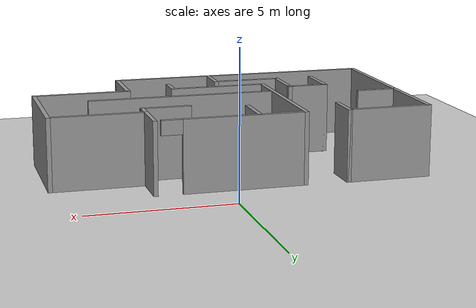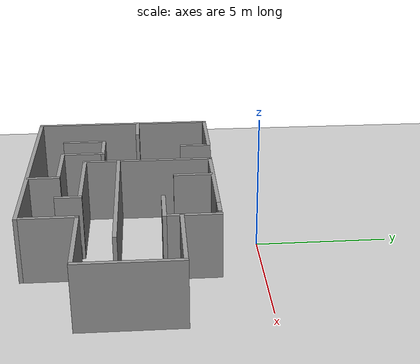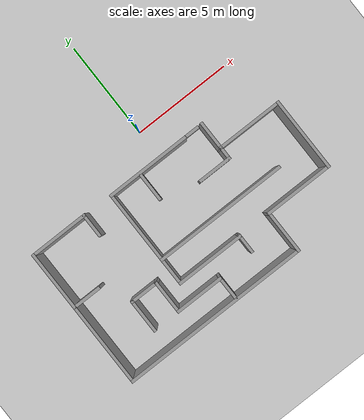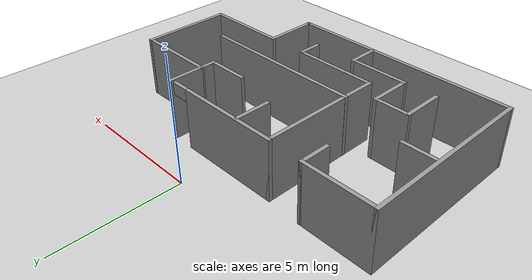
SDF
<sdf version="1.7">
 <world name="myworld">
  <light name="sun" type="directional">
   <pose>0 0 10 0 -0 0</pose>
   <diffuse>0.8 0.8 0.8 1</diffuse>
   <specular>0.2 0.2 0.2 1</specular>
   <attenuation>
    <range>1000</range>
    <constant>0.9</constant>
    <linear>0.01</linear>
    <quadratic>0.001</quadratic>
   </attenuation>
   <direction>-0.5 0.1 -0.9</direction>
   <spot><inner_angle>0</inner_angle><outer_angle>0</outer_angle><falloff>0</falloff></spot>
  </light>
  <model name="ground_plane">
   <static>1</static>
   <link name="link">
    <collision name="collision">
     <geometry><plane><normal>0 0 1</normal><size>100 100</size></plane></geometry>
     <surface>
      <contact><collide_bitmask>65535</collide_bitmask></contact>
      <friction><ode><mu>100</mu><mu2>50</mu2></ode></friction>
     </surface>
    </collision>
    <visual name="visual">
     <cast_shadows>0</cast_shadows>
     <geometry><plane><normal>0 0 1</normal><size>100 100</size></plane></geometry>
     <material>
      <script><uri>file://media/materials/scripts/gazebo.material</uri><name>Gazebo/Grey</name></script>
     </material>
    </visual>
   </link>
  </model>
  <gravity>0 0 -9.8</gravity>
  <magnetic_field>6e-06 2.3e-05 -4.2e-05</magnetic_field>
  <atmosphere type="adiabatic"/>
  <physics type="ode">
   <max_step_size>0.001</max_step_size>
   <real_time_factor>1</real_time_factor>
   <real_time_update_rate>1000</real_time_update_rate>
  </physics>
  <scene><ambient>0.4 0.4 0.4 1</ambient><background>0.7 0.7 0.7 1</background><shadows>1</shadows></scene>
  <spherical_coordinates>
   <surface_model>EARTH_WGS84</surface_model>
   <latitude_deg>0</latitude_deg>
   <longitude_deg>0</longitude_deg>
   <elevation>0</elevation>
   <heading_deg>0</heading_deg>
  </spherical_coordinates>
  <model name="Untitled">
   <pose>-0.75 -4.35376 0 0 -0 0</pose>
   <link name="Wall_0">
    <pose>0.425 2.76376 0 0 -0 0</pose>
    <visual name="Wall_0_Visual_0">
     <pose>-0.359406 0 1.25 0 -0 0</pose>
     <geometry><box><size>4.28119 0.15 2.5</size></box></geometry>
     <material>
      <script><uri>file://media/materials/scripts/gazebo.material</uri><name>Gazebo/Grey</name></script>
      <ambient>1 1 1 1</ambient>
     </material>
     <meta><layer>0</layer></meta>
    </visual>
    <collision name="Wall_0_Collision_0">
     <geometry><box><size>4.28119 0.15 2.5</size></box></geometry>
     <pose>-0.359406 0 1.25 0 -0 0</pose>
    </collision>
    <visual name="Wall_0_Visual_1">
     <pose>2.14059 0 2.25 0 -0 0</pose>
     <geometry><box><size>0.718812 0.15 0.5</size></box></geometry>
     <material>
      <script><uri>file://media/materials/scripts/gazebo.material</uri><name>Gazebo/Grey</name></script>
      <ambient>1 1 1 1</ambient>
     </material>
     <meta><layer>0</layer></meta>
    </visual>
    <collision name="Wall_0_Collision_1">
     <geometry><box><size>0.718812 0.15 0.5</size></box></geometry>
     <pose>2.14059 0 2.25 0 -0 0</pose>
    </collision>
   </link>
   <link name="Wall_14">
    <collision name="Wall_14_Collision">
     <geometry><box><size>1.5 0.15 2.5</size></box></geometry>
     <pose>0 0 1.25 0 -0 0</pose>
    </collision>
    <visual name="Wall_14_Visual">
     <pose>0 0 1.25 0 -0 0</pose>
     <geometry><box><size>1.5 0.15 2.5</size></box></geometry>
     <material>
      <script><uri>file://media/materials/scripts/gazebo.material</uri><name>Gazebo/Grey</name></script>
      <ambient>1 1 1 1</ambient>
     </material>
     <meta><layer>0</layer></meta>
    </visual>
    <pose>3.1188 2.09716 0 0 -0 -1.5708</pose>
   </link>
   <link name="Wall_15">
    <collision name="Wall_15_Collision">
     <geometry><box><size>3.23121 0.15 2.5</size></box></geometry>
     <pose>0 0 1.25 0 -0 0</pose>
    </collision>
    <visual name="Wall_15_Visual">
     <pose>0 0 1.25 0 -0 0</pose>
     <geometry><box><size>3.23121 0.15 2.5</size></box></geometry>
     <material>
      <script><uri>file://media/materials/scripts/gazebo.material</uri><name>Gazebo/Grey</name></script>
      <ambient>1 1 1 1</ambient>
     </material>
     <meta><layer>0</layer></meta>
    </visual>
    <pose>4.6594 1.41796 0 0 -0 -0.002725</pose>
   </link>
   <link name="Wall_18">
    <collision name="Wall_18_Collision">
     <geometry><box><size>3.75 0.15 2.5</size></box></geometry>
     <pose>0 0 1.25 0 -0 0</pose>
    </collision>
    <visual name="Wall_18_Visual">
     <pose>0 0 1.25 0 -0 0</pose>
     <geometry><box><size>3.75 0.15 2.5</size></box></geometry>
     <material>
      <script><uri>file://media/materials/scripts/gazebo.material</uri><name>Gazebo/Grey</name></script>
      <ambient>1 1 1 1</ambient>
     </material>
     <meta><layer>0</layer></meta>
    </visual>
    <pose>6.35 -0.378761 0 0 -0 1.5708</pose>
   </link>
   <link name="Wall_20">
    <collision name="Wall_20_Collision">
     <geometry><box><size>3.5 0.15 2.5</size></box></geometry>
     <pose>0 0 1.25 0 -0 0</pose>
    </collision>
    <visual name="Wall_20_Visual">
     <pose>0 0 1.25 0 -0 0</pose>
     <geometry><box><size>3.5 0.15 2.5</size></box></geometry>
     <material>
      <script><uri>file://media/materials/scripts/gazebo.material</uri><name>Gazebo/Grey</name></script>
      <ambient>1 1 1 1</ambient>
     </material>
     <meta><layer>0</layer></meta>
    </visual>
    <pose>-0.325 -2.17876 0 0 -0 0</pose>
   </link>
   <link name="Wall_22">
    <collision name="Wall_22_Collision">
     <geometry><box><size>3.5 0.15 2.5</size></box></geometry>
     <pose>0 0 1.25 0 -0 0</pose>
    </collision>
    <visual name="Wall_22_Visual">
     <pose>0 0 1.25 0 -0 0</pose>
     <geometry><box><size>3.5 0.15 2.5</size></box></geometry>
     <material>
      <script><uri>file://media/materials/scripts/gazebo.material</uri><name>Gazebo/Grey</name></script>
      <ambient>1 1 1 1</ambient>
     </material>
     <meta><layer>0</layer></meta>
    </visual>
    <pose>4.675 -2.17876 0 0 -0 3.14159</pose>
   </link>
   <link name="Wall_23">
    <collision name="Wall_23_Collision">
     <geometry><box><size>2.25 0.15 2.5</size></box></geometry>
     <pose>0 0 1.25 0 -0 0</pose>
    </collision>
    <visual name="Wall_23_Visual">
     <pose>0 0 1.25 0 -0 0</pose>
     <geometry><box><size>2.25 0.15 2.5</size></box></geometry>
     <material>
      <script><uri>file://media/materials/scripts/gazebo.material</uri><name>Gazebo/Grey</name></script>
      <ambient>1 1 1 1</ambient>
     </material>
     <meta><layer>0</layer></meta>
    </visual>
    <pose>3 -3.22876 0 0 -0 -1.5708</pose>
   </link>
   <link name="Wall_24">
    <collision name="Wall_24_Collision">
     <geometry><box><size>9.5 0.15 2.5</size></box></geometry>
     <pose>0 0 1.25 0 -0 0</pose>
    </collision>
    <visual name="Wall_24_Visual">
     <pose>0 0 1.25 0 -0 0</pose>
     <geometry><box><size>9.5 0.15 2.5</size></box></geometry>
     <material>
      <script><uri>file://media/materials/scripts/gazebo.material</uri><name>Gazebo/Grey</name></script>
      <ambient>1 1 1 1</ambient>
     </material>
     <meta><layer>0</layer></meta>
    </visual>
    <pose>-1.675 -4.27876 0 0 -0 3.14159</pose>
   </link>
   <link name="Wall_25">
    <collision name="Wall_25_Collision">
     <geometry><box><size>7.25 0.15 2.5</size></box></geometry>
     <pose>0 0 1.25 0 -0 0</pose>
    </collision>
    <visual name="Wall_25_Visual">
     <pose>0 0 1.25 0 -0 0</pose>
     <geometry><box><size>7.25 0.15 2.5</size></box></geometry>
     <material>
      <script><uri>file://media/materials/scripts/gazebo.material</uri><name>Gazebo/Grey</name></script>
      <ambient>1 1 1 1</ambient>
     </material>
     <meta><layer>0</layer></meta>
    </visual>
    <pose>-6.35 -0.728761 0 0 -0 1.5708</pose>
   </link>
   <link name="Wall_26">
    <collision name="Wall_26_Collision">
     <geometry><box><size>3 0.15 2.5</size></box></geometry>
     <pose>0 0 1.25 0 -0 0</pose>
    </collision>
    <visual name="Wall_26_Visual">
     <pose>0 0 1.25 0 -0 0</pose>
     <geometry><box><size>3 0.15 2.5</size></box></geometry>
     <material>
      <script><uri>file://media/materials/scripts/gazebo.material</uri><name>Gazebo/Grey</name></script>
      <ambient>1 1 1 1</ambient>
     </material>
     <meta><layer>0</layer></meta>
    </visual>
    <pose>-4.925 2.82124 0 0 -0 0</pose>
   </link>
   <link name="Wall_27">
    <collision name="Wall_27_Collision">
     <geometry><box><size>1.25 0.15 2.5</size></box></geometry>
     <pose>0 0 1.25 0 -0 0</pose>
    </collision>
    <visual name="Wall_27_Visual">
     <pose>0 0 1.25 0 -0 0</pose>
     <geometry><box><size>1.25 0.15 2.5</size></box></geometry>
     <material>
      <script><uri>file://media/materials/scripts/gazebo.material</uri><name>Gazebo/Grey</name></script>
      <ambient>1 1 1 1</ambient>
     </material>
     <meta><layer>0</layer></meta>
    </visual>
    <pose>-3.5 2.27124 0 0 -0 -1.5708</pose>
   </link>
   <link name="Wall_29">
    <collision name="Wall_29_Collision">
     <geometry><box><size>1 0.15 2.5</size></box></geometry>
     <pose>0 0 1.25 0 -0 0</pose>
    </collision>
    <visual name="Wall_29_Visual">
     <pose>0 0 1.25 0 -0 0</pose>
     <geometry><box><size>1 0.15 2.5</size></box></geometry>
     <material>
      <script><uri>file://media/materials/scripts/gazebo.material</uri><name>Gazebo/Grey</name></script>
      <ambient>1 1 1 1</ambient>
     </material>
     <meta><layer>0</layer></meta>
    </visual>
    <pose>1.35 -2.60376 0 0 -0 -1.5708</pose>
   </link>
   <link name="Wall_31">
    <collision name="Wall_31_Collision">
     <geometry><box><size>1.25 0.15 2.5</size></box></geometry>
     <pose>0 0 1.25 0 -0 0</pose>
    </collision>
    <visual name="Wall_31_Visual">
     <pose>0 0 1.25 0 -0 0</pose>
     <geometry><box><size>1.25 0.15 2.5</size></box></geometry>
     <material>
      <script><uri>file://media/materials/scripts/gazebo.material</uri><name>Gazebo/Grey</name></script>
      <ambient>1 1 1 1</ambient>
     </material>
     <meta><layer>0</layer></meta>
    </visual>
    <pose>-0.490258 -3.6568 0 0 -0 1.5708</pose>
   </link>
   <link name="Wall_32">
    <collision name="Wall_32_Collision">
     <geometry><box><size>2.5 0.15 2.5</size></box></geometry>
     <pose>0 0 1.25 0 -0 0</pose>
    </collision>
    <visual name="Wall_32_Visual">
     <pose>0 0 1.25 0 -0 0</pose>
     <geometry><box><size>2.5 0.15 2.5</size></box></geometry>
     <material>
      <script><uri>file://media/materials/scripts/gazebo.material</uri><name>Gazebo/Grey</name></script>
      <ambient>1 1 1 1</ambient>
     </material>
     <meta><layer>0</layer></meta>
    </visual>
    <pose>-1.66526 -3.1068 0 0 -0 3.14159</pose>
   </link>
   <link name="Wall_33">
    <collision name="Wall_33_Collision">
     <geometry><box><size>1.75 0.15 2.5</size></box></geometry>
     <pose>0 0 1.25 0 -0 0</pose>
    </collision>
    <visual name="Wall_33_Visual">
     <pose>0 0 1.25 0 -0 0</pose>
     <geometry><box><size>1.75 0.15 2.5</size></box></geometry>
     <material>
      <script><uri>file://media/materials/scripts/gazebo.material</uri><name>Gazebo/Grey</name></script>
      <ambient>1 1 1 1</ambient>
     </material>
     <meta><layer>0</layer></meta>
    </visual>
    <pose>-2.84026 -2.3068 0 0 -0 1.5708</pose>
   </link>
   <link name="Wall_34">
    <collision name="Wall_34_Collision">
     <geometry><box><size>1.5 0.15 2.5</size></box></geometry>
     <pose>0 0 1.25 0 -0 0</pose>
    </collision>
    <visual name="Wall_34_Visual">
     <pose>0 0 1.25 0 -0 0</pose>
     <geometry><box><size>1.5 0.15 2.5</size></box></geometry>
     <material>
      <script><uri>file://media/materials/scripts/gazebo.material</uri><name>Gazebo/Grey</name></script>
      <ambient>1 1 1 1</ambient>
     </material>
     <meta><layer>0</layer></meta>
    </visual>
    <pose>-3.51526 -1.5068 0 0 -0 3.14159</pose>
   </link>
   <link name="Wall_35">
    <collision name="Wall_35_Collision">
     <geometry><box><size>1.75 0.15 2.5</size></box></geometry>
     <pose>0 0 1.25 0 -0 0</pose>
    </collision>
    <visual name="Wall_35_Visual">
     <pose>0 0 1.25 0 -0 0</pose>
     <geometry><box><size>1.75 0.15 2.5</size></box></geometry>
     <material>
      <script><uri>file://media/materials/scripts/gazebo.material</uri><name>Gazebo/Grey</name></script>
      <ambient>1 1 1 1</ambient>
     </material>
     <meta><layer>0</layer></meta>
    </visual>
    <pose>-4.19026 -2.3068 0 0 -0 -1.5708</pose>
   </link>
   <link name="Wall_37">
    <collision name="Wall_37_Collision">
     <geometry><box><size>1.5 0.15 2.5</size></box></geometry>
     <pose>0 0 1.25 0 -0 0</pose>
    </collision>
    <visual name="Wall_37_Visual">
     <pose>0 0 1.25 0 -0 0</pose>
     <geometry><box><size>1.5 0.15 2.5</size></box></geometry>
     <material>
      <script><uri>file://media/materials/scripts/gazebo.material</uri><name>Gazebo/Grey</name></script>
      <ambient>1 1 1 1</ambient>
     </material>
     <meta><layer>0</layer></meta>
    </visual>
    <pose>-5.6673 -0.110372 0 0 -0 0</pose>
   </link>
   <link name="Wall_39">
    <collision name="Wall_39_Collision">
     <geometry><box><size>0.75 0.15 2.5</size></box></geometry>
     <pose>0 0 1.25 0 -0 0</pose>
    </collision>
    <visual name="Wall_39_Visual">
     <pose>0 0 1.25 0 -0 0</pose>
     <geometry><box><size>0.75 0.15 2.5</size></box></geometry>
     <material>
      <script><uri>file://media/materials/scripts/gazebo.material</uri><name>Gazebo/Grey</name></script>
      <ambient>1 1 1 1</ambient>
     </material>
     <meta><layer>0</layer></meta>
    </visual>
    <pose>3.1188 1.12216 0 0 -0 -1.5708</pose>
   </link>
   <link name="Wall_40">
    <collision name="Wall_40_Collision">
     <geometry><box><size>1.75 0.15 2.5</size></box></geometry>
     <pose>0 0 1.25 0 -0 0</pose>
    </collision>
    <visual name="Wall_40_Visual">
     <pose>0 0 1.25 0 -0 0</pose>
     <geometry><box><size>1.75 0.15 2.5</size></box></geometry>
     <material>
      <script><uri>file://media/materials/scripts/gazebo.material</uri><name>Gazebo/Grey</name></script>
      <ambient>1 1 1 1</ambient>
     </material>
     <meta><layer>0</layer></meta>
    </visual>
    <pose>2.3188 0.822159 0 0 -0 3.14159</pose>
   </link>
   <link name="Wall_42">
    <collision name="Wall_42_Collision">
     <geometry><box><size>1.5 0.15 2.5</size></box></geometry>
     <pose>0 0 1.25 0 -0 0</pose>
    </collision>
    <visual name="Wall_42_Visual">
     <pose>0 0 1.25 0 -0 0</pose>
     <geometry><box><size>1.5 0.15 2.5</size></box></geometry>
     <material>
      <script><uri>file://media/materials/scripts/gazebo.material</uri><name>Gazebo/Grey</name></script>
      <ambient>1 1 1 1</ambient>
     </material>
     <meta><layer>0</layer></meta>
    </visual>
    <pose>-0.410457 2.00765 0 0 -0 -1.5708</pose>
   </link>
   <link name="Wall_45">
    <collision name="Wall_45_Collision">
     <geometry><box><size>6.75 0.15 2.5</size></box></geometry>
     <pose>0 0 1.25 0 -0 0</pose>
    </collision>
    <visual name="Wall_45_Visual">
     <pose>0 0 1.25 0 -0 0</pose>
     <geometry><box><size>6.75 0.15 2.5</size></box></geometry>
     <material>
      <script><uri>file://media/materials/scripts/gazebo.material</uri><name>Gazebo/Grey</name></script>
      <ambient>1 1 1 1</ambient>
     </material>
     <meta><layer>0</layer></meta>
    </visual>
    <pose>1.29353 -0.855177 0 0 -0 0</pose>
   </link>
   <link name="Wall_9">
    <collision name="Wall_9_Collision">
     <geometry><box><size>5.09252 0.15 2.5</size></box></geometry>
     <pose>0 0 1.25 0 -0 0</pose>
    </collision>
    <visual name="Wall_9_Visual">
     <pose>0 0 1.25 0 -0 0</pose>
     <geometry><box><size>5.09252 0.15 2.5</size></box></geometry>
     <material>
      <script><uri>file://media/materials/scripts/gazebo.material</uri><name>Gazebo/Grey</name></script>
      <ambient>1 1 1 1</ambient>
     </material>
     <meta><layer>0</layer></meta>
    </visual>
    <pose>-2 0.2925 0 0 -0 -1.5708</pose>
   </link>
   <static>1</static>
  </model>
 </world>
</sdf>
